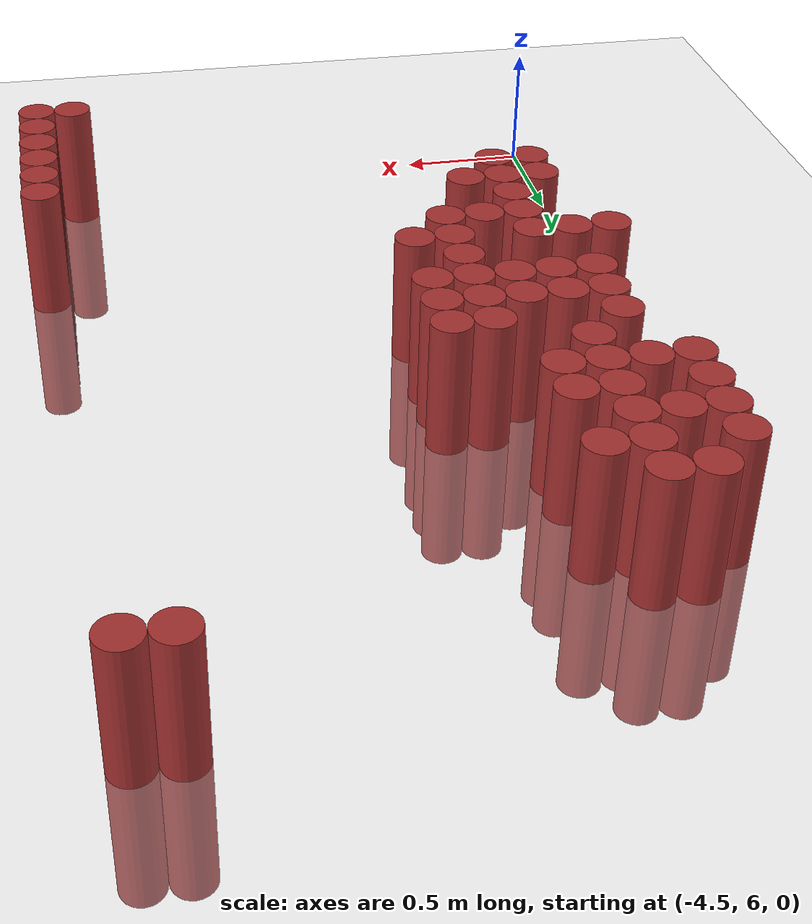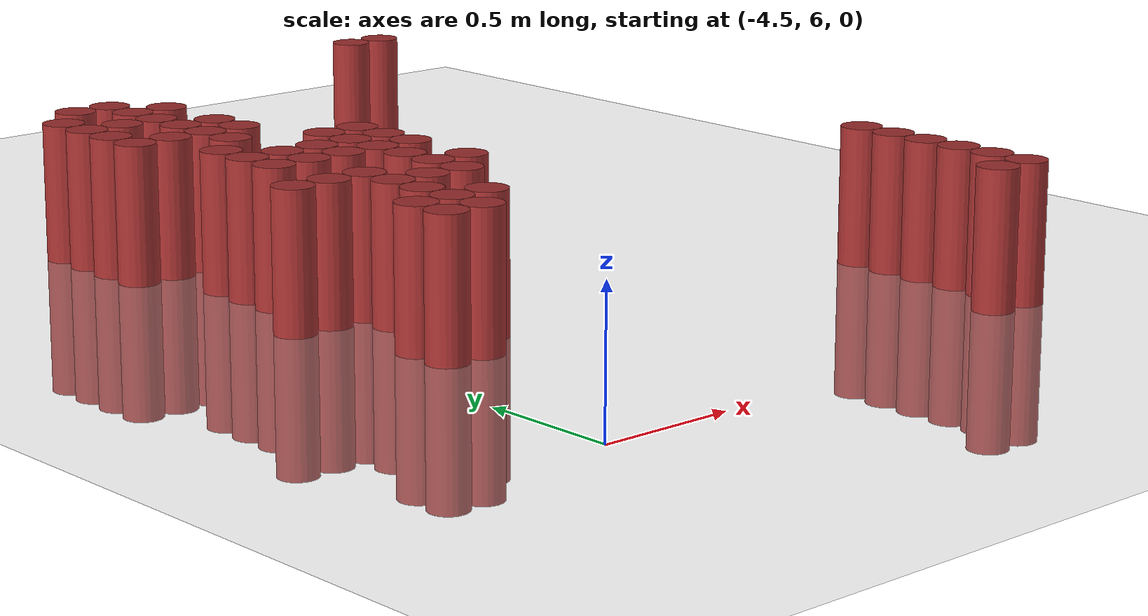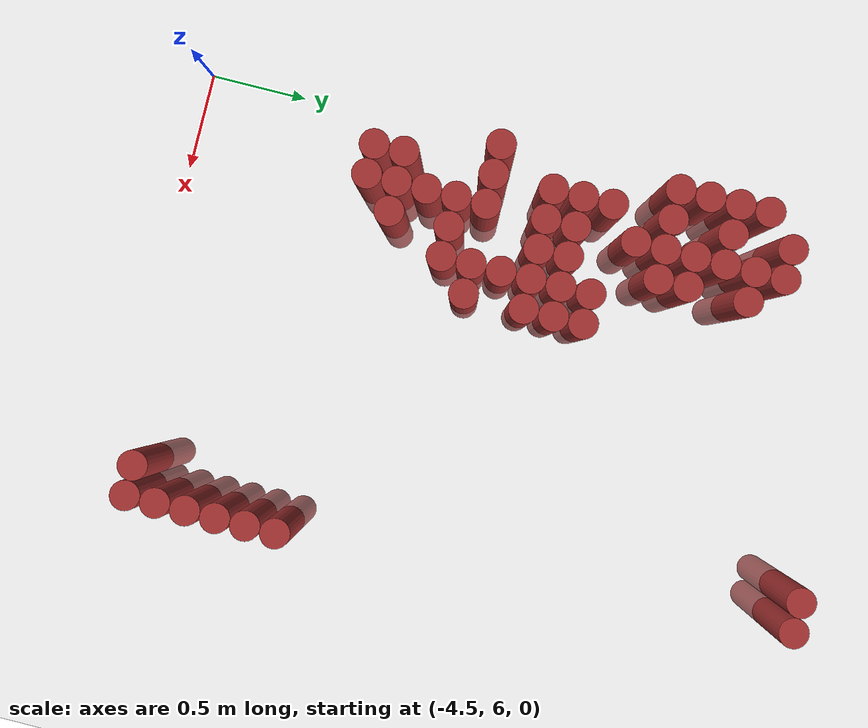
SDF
<sdf version="1.6">
 <world name="default">
  <model name="ground_plane">
   <static>1</static>
   <link name="link">
    <collision name="collision">
     <geometry><plane><normal>0 0 1</normal><size>100 100</size></plane></geometry>
     <surface><friction><ode><mu>100</mu><mu2>50</mu2></ode></friction></surface>
    </collision>
    <visual name="visual">
     <cast_shadows>0</cast_shadows>
     <geometry><plane><normal>0 0 1</normal><size>100 100</size></plane></geometry>
     <material>
      <script><uri>file://media/materials/scripts/gazebo.material</uri><name>Gazebo/Grey</name></script>
     </material>
    </visual>
   </link>
  </model>
  <model name="unit_cylinder_283">
   <static>1</static>
   <pose>-4.425000 7.575000 0.000000 0.000000 0.000000 0.000000</pose>
   <link name="link">
    <inertial>
     <mass>1</mass>
     <inertia><ixx>0.145833</ixx><ixy>0</ixy><ixz>0</ixz><iyy>0.145833</iyy><iyz>0</iyz><izz>0.125</izz></inertia>
    </inertial>
    <collision name="collision">
     <geometry><cylinder><radius>0.075000</radius><length>1</length></cylinder></geometry>
    </collision>
    <visual name="visual">
     <geometry><cylinder><radius>0.075000</radius><length>1</length></cylinder></geometry>
     <material>
      <ambient>0.648000 0.192000 0.192000 1</ambient>
      <diffuse>0.648000 0.192000 0.192000 1</diffuse>
     </material>
     <material>
      <script><name>Gazebo/Grey</name><uri>file://media/materials/scripts/gazebo.material</uri></script>
     </material>
    </visual>
   </link>
  </model>
  <model name="unit_cylinder_284">
   <static>1</static>
   <pose>-4.425000 8.475000 0.000000 0.000000 0.000000 0.000000</pose>
   <link name="link">
    <inertial>
     <mass>1</mass>
     <inertia><ixx>0.145833</ixx><ixy>0</ixy><ixz>0</ixz><iyy>0.145833</iyy><iyz>0</iyz><izz>0.125</izz></inertia>
    </inertial>
    <collision name="collision">
     <geometry><cylinder><radius>0.075000</radius><length>1</length></cylinder></geometry>
    </collision>
    <visual name="visual">
     <geometry><cylinder><radius>0.075000</radius><length>1</length></cylinder></geometry>
     <material>
      <ambient>0.648000 0.192000 0.192000 1</ambient>
      <diffuse>0.648000 0.192000 0.192000 1</diffuse>
     </material>
     <material>
      <script><name>Gazebo/Grey</name><uri>file://media/materials/scripts/gazebo.material</uri></script>
     </material>
    </visual>
   </link>
  </model>
  <model name="unit_cylinder_285">
   <static>1</static>
   <pose>-4.425000 8.625000 0.000000 0.000000 0.000000 0.000000</pose>
   <link name="link">
    <inertial>
     <mass>1</mass>
     <inertia><ixx>0.145833</ixx><ixy>0</ixy><ixz>0</ixz><iyy>0.145833</iyy><iyz>0</iyz><izz>0.125</izz></inertia>
    </inertial>
    <collision name="collision">
     <geometry><cylinder><radius>0.075000</radius><length>1</length></cylinder></geometry>
    </collision>
    <visual name="visual">
     <geometry><cylinder><radius>0.075000</radius><length>1</length></cylinder></geometry>
     <material>
      <ambient>0.648000 0.192000 0.192000 1</ambient>
      <diffuse>0.648000 0.192000 0.192000 1</diffuse>
     </material>
     <material>
      <script><name>Gazebo/Grey</name><uri>file://media/materials/scripts/gazebo.material</uri></script>
     </material>
    </visual>
   </link>
  </model>
  <model name="unit_cylinder_286">
   <static>1</static>
   <pose>-4.425000 8.775000 0.000000 0.000000 0.000000 0.000000</pose>
   <link name="link">
    <inertial>
     <mass>1</mass>
     <inertia><ixx>0.145833</ixx><ixy>0</ixy><ixz>0</ixz><iyy>0.145833</iyy><iyz>0</iyz><izz>0.125</izz></inertia>
    </inertial>
    <collision name="collision">
     <geometry><cylinder><radius>0.075000</radius><length>1</length></cylinder></geometry>
    </collision>
    <visual name="visual">
     <geometry><cylinder><radius>0.075000</radius><length>1</length></cylinder></geometry>
     <material>
      <ambient>0.648000 0.192000 0.192000 1</ambient>
      <diffuse>0.648000 0.192000 0.192000 1</diffuse>
     </material>
     <material>
      <script><name>Gazebo/Grey</name><uri>file://media/materials/scripts/gazebo.material</uri></script>
     </material>
    </visual>
   </link>
  </model>
  <model name="unit_cylinder_287">
   <static>1</static>
   <pose>-4.425000 8.925000 0.000000 0.000000 0.000000 0.000000</pose>
   <link name="link">
    <inertial>
     <mass>1</mass>
     <inertia><ixx>0.145833</ixx><ixy>0</ixy><ixz>0</ixz><iyy>0.145833</iyy><iyz>0</iyz><izz>0.125</izz></inertia>
    </inertial>
    <collision name="collision">
     <geometry><cylinder><radius>0.075000</radius><length>1</length></cylinder></geometry>
    </collision>
    <visual name="visual">
     <geometry><cylinder><radius>0.075000</radius><length>1</length></cylinder></geometry>
     <material>
      <ambient>0.648000 0.192000 0.192000 1</ambient>
      <diffuse>0.648000 0.192000 0.192000 1</diffuse>
     </material>
     <material>
      <script><name>Gazebo/Grey</name><uri>file://media/materials/scripts/gazebo.material</uri></script>
     </material>
    </visual>
   </link>
  </model>
  <model name="unit_cylinder_288">
   <static>1</static>
   <pose>-4.275000 6.975000 0.000000 0.000000 0.000000 0.000000</pose>
   <link name="link">
    <inertial>
     <mass>1</mass>
     <inertia><ixx>0.145833</ixx><ixy>0</ixy><ixz>0</ixz><iyy>0.145833</iyy><iyz>0</iyz><izz>0.125</izz></inertia>
    </inertial>
    <collision name="collision">
     <geometry><cylinder><radius>0.075000</radius><length>1</length></cylinder></geometry>
    </collision>
    <visual name="visual">
     <geometry><cylinder><radius>0.075000</radius><length>1</length></cylinder></geometry>
     <material>
      <ambient>0.648000 0.192000 0.192000 1</ambient>
      <diffuse>0.648000 0.192000 0.192000 1</diffuse>
     </material>
     <material>
      <script><name>Gazebo/Grey</name><uri>file://media/materials/scripts/gazebo.material</uri></script>
     </material>
    </visual>
   </link>
  </model>
  <model name="unit_cylinder_289">
   <static>1</static>
   <pose>-4.275000 7.125000 0.000000 0.000000 0.000000 0.000000</pose>
   <link name="link">
    <inertial>
     <mass>1</mass>
     <inertia><ixx>0.145833</ixx><ixy>0</ixy><ixz>0</ixz><iyy>0.145833</iyy><iyz>0</iyz><izz>0.125</izz></inertia>
    </inertial>
    <collision name="collision">
     <geometry><cylinder><radius>0.075000</radius><length>1</length></cylinder></geometry>
    </collision>
    <visual name="visual">
     <geometry><cylinder><radius>0.075000</radius><length>1</length></cylinder></geometry>
     <material>
      <ambient>0.648000 0.192000 0.192000 1</ambient>
      <diffuse>0.648000 0.192000 0.192000 1</diffuse>
     </material>
     <material>
      <script><name>Gazebo/Grey</name><uri>file://media/materials/scripts/gazebo.material</uri></script>
     </material>
    </visual>
   </link>
  </model>
  <model name="unit_cylinder_290">
   <static>1</static>
   <pose>-4.275000 7.575000 0.000000 0.000000 0.000000 0.000000</pose>
   <link name="link">
    <inertial>
     <mass>1</mass>
     <inertia><ixx>0.145833</ixx><ixy>0</ixy><ixz>0</ixz><iyy>0.145833</iyy><iyz>0</iyz><izz>0.125</izz></inertia>
    </inertial>
    <collision name="collision">
     <geometry><cylinder><radius>0.075000</radius><length>1</length></cylinder></geometry>
    </collision>
    <visual name="visual">
     <geometry><cylinder><radius>0.075000</radius><length>1</length></cylinder></geometry>
     <material>
      <ambient>0.648000 0.192000 0.192000 1</ambient>
      <diffuse>0.648000 0.192000 0.192000 1</diffuse>
     </material>
     <material>
      <script><name>Gazebo/Grey</name><uri>file://media/materials/scripts/gazebo.material</uri></script>
     </material>
    </visual>
   </link>
  </model>
  <model name="unit_cylinder_291">
   <static>1</static>
   <pose>-4.275000 7.875000 0.000000 0.000000 0.000000 0.000000</pose>
   <link name="link">
    <inertial>
     <mass>1</mass>
     <inertia><ixx>0.145833</ixx><ixy>0</ixy><ixz>0</ixz><iyy>0.145833</iyy><iyz>0</iyz><izz>0.125</izz></inertia>
    </inertial>
    <collision name="collision">
     <geometry><cylinder><radius>0.075000</radius><length>1</length></cylinder></geometry>
    </collision>
    <visual name="visual">
     <geometry><cylinder><radius>0.075000</radius><length>1</length></cylinder></geometry>
     <material>
      <ambient>0.648000 0.192000 0.192000 1</ambient>
      <diffuse>0.648000 0.192000 0.192000 1</diffuse>
     </material>
     <material>
      <script><name>Gazebo/Grey</name><uri>file://media/materials/scripts/gazebo.material</uri></script>
     </material>
    </visual>
   </link>
  </model>
  <model name="unit_cylinder_292">
   <static>1</static>
   <pose>-4.275000 8.025000 0.000000 0.000000 0.000000 0.000000</pose>
   <link name="link">
    <inertial>
     <mass>1</mass>
     <inertia><ixx>0.145833</ixx><ixy>0</ixy><ixz>0</ixz><iyy>0.145833</iyy><iyz>0</iyz><izz>0.125</izz></inertia>
    </inertial>
    <collision name="collision">
     <geometry><cylinder><radius>0.075000</radius><length>1</length></cylinder></geometry>
    </collision>
    <visual name="visual">
     <geometry><cylinder><radius>0.075000</radius><length>1</length></cylinder></geometry>
     <material>
      <ambient>0.648000 0.192000 0.192000 1</ambient>
      <diffuse>0.648000 0.192000 0.192000 1</diffuse>
     </material>
     <material>
      <script><name>Gazebo/Grey</name><uri>file://media/materials/scripts/gazebo.material</uri></script>
     </material>
    </visual>
   </link>
  </model>
  <model name="unit_cylinder_293">
   <static>1</static>
   <pose>-4.275000 8.175000 0.000000 0.000000 0.000000 0.000000</pose>
   <link name="link">
    <inertial>
     <mass>1</mass>
     <inertia><ixx>0.145833</ixx><ixy>0</ixy><ixz>0</ixz><iyy>0.145833</iyy><iyz>0</iyz><izz>0.125</izz></inertia>
    </inertial>
    <collision name="collision">
     <geometry><cylinder><radius>0.075000</radius><length>1</length></cylinder></geometry>
    </collision>
    <visual name="visual">
     <geometry><cylinder><radius>0.075000</radius><length>1</length></cylinder></geometry>
     <material>
      <ambient>0.648000 0.192000 0.192000 1</ambient>
      <diffuse>0.648000 0.192000 0.192000 1</diffuse>
     </material>
     <material>
      <script><name>Gazebo/Grey</name><uri>file://media/materials/scripts/gazebo.material</uri></script>
     </material>
    </visual>
   </link>
  </model>
  <model name="unit_cylinder_294">
   <static>1</static>
   <pose>-4.275000 8.475000 0.000000 0.000000 0.000000 0.000000</pose>
   <link name="link">
    <inertial>
     <mass>1</mass>
     <inertia><ixx>0.145833</ixx><ixy>0</ixy><ixz>0</ixz><iyy>0.145833</iyy><iyz>0</iyz><izz>0.125</izz></inertia>
    </inertial>
    <collision name="collision">
     <geometry><cylinder><radius>0.075000</radius><length>1</length></cylinder></geometry>
    </collision>
    <visual name="visual">
     <geometry><cylinder><radius>0.075000</radius><length>1</length></cylinder></geometry>
     <material>
      <ambient>0.648000 0.192000 0.192000 1</ambient>
      <diffuse>0.648000 0.192000 0.192000 1</diffuse>
     </material>
     <material>
      <script><name>Gazebo/Grey</name><uri>file://media/materials/scripts/gazebo.material</uri></script>
     </material>
    </visual>
   </link>
  </model>
  <model name="unit_cylinder_295">
   <static>1</static>
   <pose>-4.275000 8.775000 0.000000 0.000000 0.000000 0.000000</pose>
   <link name="link">
    <inertial>
     <mass>1</mass>
     <inertia><ixx>0.145833</ixx><ixy>0</ixy><ixz>0</ixz><iyy>0.145833</iyy><iyz>0</iyz><izz>0.125</izz></inertia>
    </inertial>
    <collision name="collision">
     <geometry><cylinder><radius>0.075000</radius><length>1</length></cylinder></geometry>
    </collision>
    <visual name="visual">
     <geometry><cylinder><radius>0.075000</radius><length>1</length></cylinder></geometry>
     <material>
      <ambient>0.648000 0.192000 0.192000 1</ambient>
      <diffuse>0.648000 0.192000 0.192000 1</diffuse>
     </material>
     <material>
      <script><name>Gazebo/Grey</name><uri>file://media/materials/scripts/gazebo.material</uri></script>
     </material>
    </visual>
   </link>
  </model>
  <model name="unit_cylinder_296">
   <static>1</static>
   <pose>-4.275000 9.075000 0.000000 0.000000 0.000000 0.000000</pose>
   <link name="link">
    <inertial>
     <mass>1</mass>
     <inertia><ixx>0.145833</ixx><ixy>0</ixy><ixz>0</ixz><iyy>0.145833</iyy><iyz>0</iyz><izz>0.125</izz></inertia>
    </inertial>
    <collision name="collision">
     <geometry><cylinder><radius>0.075000</radius><length>1</length></cylinder></geometry>
    </collision>
    <visual name="visual">
     <geometry><cylinder><radius>0.075000</radius><length>1</length></cylinder></geometry>
     <material>
      <ambient>0.648000 0.192000 0.192000 1</ambient>
      <diffuse>0.648000 0.192000 0.192000 1</diffuse>
     </material>
     <material>
      <script><name>Gazebo/Grey</name><uri>file://media/materials/scripts/gazebo.material</uri></script>
     </material>
    </visual>
   </link>
  </model>
  <model name="unit_cylinder_297">
   <static>1</static>
   <pose>-4.125000 6.975000 0.000000 0.000000 0.000000 0.000000</pose>
   <link name="link">
    <inertial>
     <mass>1</mass>
     <inertia><ixx>0.145833</ixx><ixy>0</ixy><ixz>0</ixz><iyy>0.145833</iyy><iyz>0</iyz><izz>0.125</izz></inertia>
    </inertial>
    <collision name="collision">
     <geometry><cylinder><radius>0.075000</radius><length>1</length></cylinder></geometry>
    </collision>
    <visual name="visual">
     <geometry><cylinder><radius>0.075000</radius><length>1</length></cylinder></geometry>
     <material>
      <ambient>0.648000 0.192000 0.192000 1</ambient>
      <diffuse>0.648000 0.192000 0.192000 1</diffuse>
     </material>
     <material>
      <script><name>Gazebo/Grey</name><uri>file://media/materials/scripts/gazebo.material</uri></script>
     </material>
    </visual>
   </link>
  </model>
  <model name="unit_cylinder_298">
   <static>1</static>
   <pose>-4.125000 7.125000 0.000000 0.000000 0.000000 0.000000</pose>
   <link name="link">
    <inertial>
     <mass>1</mass>
     <inertia><ixx>0.145833</ixx><ixy>0</ixy><ixz>0</ixz><iyy>0.145833</iyy><iyz>0</iyz><izz>0.125</izz></inertia>
    </inertial>
    <collision name="collision">
     <geometry><cylinder><radius>0.075000</radius><length>1</length></cylinder></geometry>
    </collision>
    <visual name="visual">
     <geometry><cylinder><radius>0.075000</radius><length>1</length></cylinder></geometry>
     <material>
      <ambient>0.648000 0.192000 0.192000 1</ambient>
      <diffuse>0.648000 0.192000 0.192000 1</diffuse>
     </material>
     <material>
      <script><name>Gazebo/Grey</name><uri>file://media/materials/scripts/gazebo.material</uri></script>
     </material>
    </visual>
   </link>
  </model>
  <model name="unit_cylinder_299">
   <static>1</static>
   <pose>-4.125000 7.275000 0.000000 0.000000 0.000000 0.000000</pose>
   <link name="link">
    <inertial>
     <mass>1</mass>
     <inertia><ixx>0.145833</ixx><ixy>0</ixy><ixz>0</ixz><iyy>0.145833</iyy><iyz>0</iyz><izz>0.125</izz></inertia>
    </inertial>
    <collision name="collision">
     <geometry><cylinder><radius>0.075000</radius><length>1</length></cylinder></geometry>
    </collision>
    <visual name="visual">
     <geometry><cylinder><radius>0.075000</radius><length>1</length></cylinder></geometry>
     <material>
      <ambient>0.648000 0.192000 0.192000 1</ambient>
      <diffuse>0.648000 0.192000 0.192000 1</diffuse>
     </material>
     <material>
      <script><name>Gazebo/Grey</name><uri>file://media/materials/scripts/gazebo.material</uri></script>
     </material>
    </visual>
   </link>
  </model>
  <model name="unit_cylinder_300">
   <static>1</static>
   <pose>-4.125000 7.425000 0.000000 0.000000 0.000000 0.000000</pose>
   <link name="link">
    <inertial>
     <mass>1</mass>
     <inertia><ixx>0.145833</ixx><ixy>0</ixy><ixz>0</ixz><iyy>0.145833</iyy><iyz>0</iyz><izz>0.125</izz></inertia>
    </inertial>
    <collision name="collision">
     <geometry><cylinder><radius>0.075000</radius><length>1</length></cylinder></geometry>
    </collision>
    <visual name="visual">
     <geometry><cylinder><radius>0.075000</radius><length>1</length></cylinder></geometry>
     <material>
      <ambient>0.648000 0.192000 0.192000 1</ambient>
      <diffuse>0.648000 0.192000 0.192000 1</diffuse>
     </material>
     <material>
      <script><name>Gazebo/Grey</name><uri>file://media/materials/scripts/gazebo.material</uri></script>
     </material>
    </visual>
   </link>
  </model>
  <model name="unit_cylinder_301">
   <static>1</static>
   <pose>-4.125000 7.575000 0.000000 0.000000 0.000000 0.000000</pose>
   <link name="link">
    <inertial>
     <mass>1</mass>
     <inertia><ixx>0.145833</ixx><ixy>0</ixy><ixz>0</ixz><iyy>0.145833</iyy><iyz>0</iyz><izz>0.125</izz></inertia>
    </inertial>
    <collision name="collision">
     <geometry><cylinder><radius>0.075000</radius><length>1</length></cylinder></geometry>
    </collision>
    <visual name="visual">
     <geometry><cylinder><radius>0.075000</radius><length>1</length></cylinder></geometry>
     <material>
      <ambient>0.648000 0.192000 0.192000 1</ambient>
      <diffuse>0.648000 0.192000 0.192000 1</diffuse>
     </material>
     <material>
      <script><name>Gazebo/Grey</name><uri>file://media/materials/scripts/gazebo.material</uri></script>
     </material>
    </visual>
   </link>
  </model>
  <model name="unit_cylinder_302">
   <static>1</static>
   <pose>-4.125000 7.875000 0.000000 0.000000 0.000000 0.000000</pose>
   <link name="link">
    <inertial>
     <mass>1</mass>
     <inertia><ixx>0.145833</ixx><ixy>0</ixy><ixz>0</ixz><iyy>0.145833</iyy><iyz>0</iyz><izz>0.125</izz></inertia>
    </inertial>
    <collision name="collision">
     <geometry><cylinder><radius>0.075000</radius><length>1</length></cylinder></geometry>
    </collision>
    <visual name="visual">
     <geometry><cylinder><radius>0.075000</radius><length>1</length></cylinder></geometry>
     <material>
      <ambient>0.648000 0.192000 0.192000 1</ambient>
      <diffuse>0.648000 0.192000 0.192000 1</diffuse>
     </material>
     <material>
      <script><name>Gazebo/Grey</name><uri>file://media/materials/scripts/gazebo.material</uri></script>
     </material>
    </visual>
   </link>
  </model>
  <model name="unit_cylinder_303">
   <static>1</static>
   <pose>-4.125000 8.025000 0.000000 0.000000 0.000000 0.000000</pose>
   <link name="link">
    <inertial>
     <mass>1</mass>
     <inertia><ixx>0.145833</ixx><ixy>0</ixy><ixz>0</ixz><iyy>0.145833</iyy><iyz>0</iyz><izz>0.125</izz></inertia>
    </inertial>
    <collision name="collision">
     <geometry><cylinder><radius>0.075000</radius><length>1</length></cylinder></geometry>
    </collision>
    <visual name="visual">
     <geometry><cylinder><radius>0.075000</radius><length>1</length></cylinder></geometry>
     <material>
      <ambient>0.648000 0.192000 0.192000 1</ambient>
      <diffuse>0.648000 0.192000 0.192000 1</diffuse>
     </material>
     <material>
      <script><name>Gazebo/Grey</name><uri>file://media/materials/scripts/gazebo.material</uri></script>
     </material>
    </visual>
   </link>
  </model>
  <model name="unit_cylinder_304">
   <static>1</static>
   <pose>-4.125000 8.325000 0.000000 0.000000 0.000000 0.000000</pose>
   <link name="link">
    <inertial>
     <mass>1</mass>
     <inertia><ixx>0.145833</ixx><ixy>0</ixy><ixz>0</ixz><iyy>0.145833</iyy><iyz>0</iyz><izz>0.125</izz></inertia>
    </inertial>
    <collision name="collision">
     <geometry><cylinder><radius>0.075000</radius><length>1</length></cylinder></geometry>
    </collision>
    <visual name="visual">
     <geometry><cylinder><radius>0.075000</radius><length>1</length></cylinder></geometry>
     <material>
      <ambient>0.648000 0.192000 0.192000 1</ambient>
      <diffuse>0.648000 0.192000 0.192000 1</diffuse>
     </material>
     <material>
      <script><name>Gazebo/Grey</name><uri>file://media/materials/scripts/gazebo.material</uri></script>
     </material>
    </visual>
   </link>
  </model>
  <model name="unit_cylinder_305">
   <static>1</static>
   <pose>-4.125000 8.475000 0.000000 0.000000 0.000000 0.000000</pose>
   <link name="link">
    <inertial>
     <mass>1</mass>
     <inertia><ixx>0.145833</ixx><ixy>0</ixy><ixz>0</ixz><iyy>0.145833</iyy><iyz>0</iyz><izz>0.125</izz></inertia>
    </inertial>
    <collision name="collision">
     <geometry><cylinder><radius>0.075000</radius><length>1</length></cylinder></geometry>
    </collision>
    <visual name="visual">
     <geometry><cylinder><radius>0.075000</radius><length>1</length></cylinder></geometry>
     <material>
      <ambient>0.648000 0.192000 0.192000 1</ambient>
      <diffuse>0.648000 0.192000 0.192000 1</diffuse>
     </material>
     <material>
      <script><name>Gazebo/Grey</name><uri>file://media/materials/scripts/gazebo.material</uri></script>
     </material>
    </visual>
   </link>
  </model>
  <model name="unit_cylinder_306">
   <static>1</static>
   <pose>-4.125000 8.625000 0.000000 0.000000 0.000000 0.000000</pose>
   <link name="link">
    <inertial>
     <mass>1</mass>
     <inertia><ixx>0.145833</ixx><ixy>0</ixy><ixz>0</ixz><iyy>0.145833</iyy><iyz>0</iyz><izz>0.125</izz></inertia>
    </inertial>
    <collision name="collision">
     <geometry><cylinder><radius>0.075000</radius><length>1</length></cylinder></geometry>
    </collision>
    <visual name="visual">
     <geometry><cylinder><radius>0.075000</radius><length>1</length></cylinder></geometry>
     <material>
      <ambient>0.648000 0.192000 0.192000 1</ambient>
      <diffuse>0.648000 0.192000 0.192000 1</diffuse>
     </material>
     <material>
      <script><name>Gazebo/Grey</name><uri>file://media/materials/scripts/gazebo.material</uri></script>
     </material>
    </visual>
   </link>
  </model>
  <model name="unit_cylinder_307">
   <static>1</static>
   <pose>-4.125000 8.775000 0.000000 0.000000 0.000000 0.000000</pose>
   <link name="link">
    <inertial>
     <mass>1</mass>
     <inertia><ixx>0.145833</ixx><ixy>0</ixy><ixz>0</ixz><iyy>0.145833</iyy><iyz>0</iyz><izz>0.125</izz></inertia>
    </inertial>
    <collision name="collision">
     <geometry><cylinder><radius>0.075000</radius><length>1</length></cylinder></geometry>
    </collision>
    <visual name="visual">
     <geometry><cylinder><radius>0.075000</radius><length>1</length></cylinder></geometry>
     <material>
      <ambient>0.648000 0.192000 0.192000 1</ambient>
      <diffuse>0.648000 0.192000 0.192000 1</diffuse>
     </material>
     <material>
      <script><name>Gazebo/Grey</name><uri>file://media/materials/scripts/gazebo.material</uri></script>
     </material>
    </visual>
   </link>
  </model>
  <model name="unit_cylinder_308">
   <static>1</static>
   <pose>-4.125000 8.925000 0.000000 0.000000 0.000000 0.000000</pose>
   <link name="link">
    <inertial>
     <mass>1</mass>
     <inertia><ixx>0.145833</ixx><ixy>0</ixy><ixz>0</ixz><iyy>0.145833</iyy><iyz>0</iyz><izz>0.125</izz></inertia>
    </inertial>
    <collision name="collision">
     <geometry><cylinder><radius>0.075000</radius><length>1</length></cylinder></geometry>
    </collision>
    <visual name="visual">
     <geometry><cylinder><radius>0.075000</radius><length>1</length></cylinder></geometry>
     <material>
      <ambient>0.648000 0.192000 0.192000 1</ambient>
      <diffuse>0.648000 0.192000 0.192000 1</diffuse>
     </material>
     <material>
      <script><name>Gazebo/Grey</name><uri>file://media/materials/scripts/gazebo.material</uri></script>
     </material>
    </visual>
   </link>
  </model>
  <model name="unit_cylinder_309">
   <static>1</static>
   <pose>-4.125000 9.075000 0.000000 0.000000 0.000000 0.000000</pose>
   <link name="link">
    <inertial>
     <mass>1</mass>
     <inertia><ixx>0.145833</ixx><ixy>0</ixy><ixz>0</ixz><iyy>0.145833</iyy><iyz>0</iyz><izz>0.125</izz></inertia>
    </inertial>
    <collision name="collision">
     <geometry><cylinder><radius>0.075000</radius><length>1</length></cylinder></geometry>
    </collision>
    <visual name="visual">
     <geometry><cylinder><radius>0.075000</radius><length>1</length></cylinder></geometry>
     <material>
      <ambient>0.648000 0.192000 0.192000 1</ambient>
      <diffuse>0.648000 0.192000 0.192000 1</diffuse>
     </material>
     <material>
      <script><name>Gazebo/Grey</name><uri>file://media/materials/scripts/gazebo.material</uri></script>
     </material>
    </visual>
   </link>
  </model>
  <model name="unit_cylinder_310">
   <static>1</static>
   <pose>-3.975000 7.125000 0.000000 0.000000 0.000000 0.000000</pose>
   <link name="link">
    <inertial>
     <mass>1</mass>
     <inertia><ixx>0.145833</ixx><ixy>0</ixy><ixz>0</ixz><iyy>0.145833</iyy><iyz>0</iyz><izz>0.125</izz></inertia>
    </inertial>
    <collision name="collision">
     <geometry><cylinder><radius>0.075000</radius><length>1</length></cylinder></geometry>
    </collision>
    <visual name="visual">
     <geometry><cylinder><radius>0.075000</radius><length>1</length></cylinder></geometry>
     <material>
      <ambient>0.648000 0.192000 0.192000 1</ambient>
      <diffuse>0.648000 0.192000 0.192000 1</diffuse>
     </material>
     <material>
      <script><name>Gazebo/Grey</name><uri>file://media/materials/scripts/gazebo.material</uri></script>
     </material>
    </visual>
   </link>
  </model>
  <model name="unit_cylinder_311">
   <static>1</static>
   <pose>-3.975000 7.425000 0.000000 0.000000 0.000000 0.000000</pose>
   <link name="link">
    <inertial>
     <mass>1</mass>
     <inertia><ixx>0.145833</ixx><ixy>0</ixy><ixz>0</ixz><iyy>0.145833</iyy><iyz>0</iyz><izz>0.125</izz></inertia>
    </inertial>
    <collision name="collision">
     <geometry><cylinder><radius>0.075000</radius><length>1</length></cylinder></geometry>
    </collision>
    <visual name="visual">
     <geometry><cylinder><radius>0.075000</radius><length>1</length></cylinder></geometry>
     <material>
      <ambient>0.648000 0.192000 0.192000 1</ambient>
      <diffuse>0.648000 0.192000 0.192000 1</diffuse>
     </material>
     <material>
      <script><name>Gazebo/Grey</name><uri>file://media/materials/scripts/gazebo.material</uri></script>
     </material>
    </visual>
   </link>
  </model>
  <model name="unit_cylinder_312">
   <static>1</static>
   <pose>-3.975000 7.875000 0.000000 0.000000 0.000000 0.000000</pose>
   <link name="link">
    <inertial>
     <mass>1</mass>
     <inertia><ixx>0.145833</ixx><ixy>0</ixy><ixz>0</ixz><iyy>0.145833</iyy><iyz>0</iyz><izz>0.125</izz></inertia>
    </inertial>
    <collision name="collision">
     <geometry><cylinder><radius>0.075000</radius><length>1</length></cylinder></geometry>
    </collision>
    <visual name="visual">
     <geometry><cylinder><radius>0.075000</radius><length>1</length></cylinder></geometry>
     <material>
      <ambient>0.648000 0.192000 0.192000 1</ambient>
      <diffuse>0.648000 0.192000 0.192000 1</diffuse>
     </material>
     <material>
      <script><name>Gazebo/Grey</name><uri>file://media/materials/scripts/gazebo.material</uri></script>
     </material>
    </visual>
   </link>
  </model>
  <model name="unit_cylinder_313">
   <static>1</static>
   <pose>-3.975000 8.025000 0.000000 0.000000 0.000000 0.000000</pose>
   <link name="link">
    <inertial>
     <mass>1</mass>
     <inertia><ixx>0.145833</ixx><ixy>0</ixy><ixz>0</ixz><iyy>0.145833</iyy><iyz>0</iyz><izz>0.125</izz></inertia>
    </inertial>
    <collision name="collision">
     <geometry><cylinder><radius>0.075000</radius><length>1</length></cylinder></geometry>
    </collision>
    <visual name="visual">
     <geometry><cylinder><radius>0.075000</radius><length>1</length></cylinder></geometry>
     <material>
      <ambient>0.648000 0.192000 0.192000 1</ambient>
      <diffuse>0.648000 0.192000 0.192000 1</diffuse>
     </material>
     <material>
      <script><name>Gazebo/Grey</name><uri>file://media/materials/scripts/gazebo.material</uri></script>
     </material>
    </visual>
   </link>
  </model>
  <model name="unit_cylinder_314">
   <static>1</static>
   <pose>-3.975000 8.475000 0.000000 0.000000 0.000000 0.000000</pose>
   <link name="link">
    <inertial>
     <mass>1</mass>
     <inertia><ixx>0.145833</ixx><ixy>0</ixy><ixz>0</ixz><iyy>0.145833</iyy><iyz>0</iyz><izz>0.125</izz></inertia>
    </inertial>
    <collision name="collision">
     <geometry><cylinder><radius>0.075000</radius><length>1</length></cylinder></geometry>
    </collision>
    <visual name="visual">
     <geometry><cylinder><radius>0.075000</radius><length>1</length></cylinder></geometry>
     <material>
      <ambient>0.648000 0.192000 0.192000 1</ambient>
      <diffuse>0.648000 0.192000 0.192000 1</diffuse>
     </material>
     <material>
      <script><name>Gazebo/Grey</name><uri>file://media/materials/scripts/gazebo.material</uri></script>
     </material>
    </visual>
   </link>
  </model>
  <model name="unit_cylinder_315">
   <static>1</static>
   <pose>-3.975000 8.625000 0.000000 0.000000 0.000000 0.000000</pose>
   <link name="link">
    <inertial>
     <mass>1</mass>
     <inertia><ixx>0.145833</ixx><ixy>0</ixy><ixz>0</ixz><iyy>0.145833</iyy><iyz>0</iyz><izz>0.125</izz></inertia>
    </inertial>
    <collision name="collision">
     <geometry><cylinder><radius>0.075000</radius><length>1</length></cylinder></geometry>
    </collision>
    <visual name="visual">
     <geometry><cylinder><radius>0.075000</radius><length>1</length></cylinder></geometry>
     <material>
      <ambient>0.648000 0.192000 0.192000 1</ambient>
      <diffuse>0.648000 0.192000 0.192000 1</diffuse>
     </material>
     <material>
      <script><name>Gazebo/Grey</name><uri>file://media/materials/scripts/gazebo.material</uri></script>
     </material>
    </visual>
   </link>
  </model>
  <model name="unit_cylinder_316">
   <static>1</static>
   <pose>-3.975000 8.925000 0.000000 0.000000 0.000000 0.000000</pose>
   <link name="link">
    <inertial>
     <mass>1</mass>
     <inertia><ixx>0.145833</ixx><ixy>0</ixy><ixz>0</ixz><iyy>0.145833</iyy><iyz>0</iyz><izz>0.125</izz></inertia>
    </inertial>
    <collision name="collision">
     <geometry><cylinder><radius>0.075000</radius><length>1</length></cylinder></geometry>
    </collision>
    <visual name="visual">
     <geometry><cylinder><radius>0.075000</radius><length>1</length></cylinder></geometry>
     <material>
      <ambient>0.648000 0.192000 0.192000 1</ambient>
      <diffuse>0.648000 0.192000 0.192000 1</diffuse>
     </material>
     <material>
      <script><name>Gazebo/Grey</name><uri>file://media/materials/scripts/gazebo.material</uri></script>
     </material>
    </visual>
   </link>
  </model>
  <model name="unit_cylinder_317">
   <static>1</static>
   <pose>-3.825000 7.425000 0.000000 0.000000 0.000000 0.000000</pose>
   <link name="link">
    <inertial>
     <mass>1</mass>
     <inertia><ixx>0.145833</ixx><ixy>0</ixy><ixz>0</ixz><iyy>0.145833</iyy><iyz>0</iyz><izz>0.125</izz></inertia>
    </inertial>
    <collision name="collision">
     <geometry><cylinder><radius>0.075000</radius><length>1</length></cylinder></geometry>
    </collision>
    <visual name="visual">
     <geometry><cylinder><radius>0.075000</radius><length>1</length></cylinder></geometry>
     <material>
      <ambient>0.648000 0.192000 0.192000 1</ambient>
      <diffuse>0.648000 0.192000 0.192000 1</diffuse>
     </material>
     <material>
      <script><name>Gazebo/Grey</name><uri>file://media/materials/scripts/gazebo.material</uri></script>
     </material>
    </visual>
   </link>
  </model>
  <model name="unit_cylinder_318">
   <static>1</static>
   <pose>-3.825000 7.575000 0.000000 0.000000 0.000000 0.000000</pose>
   <link name="link">
    <inertial>
     <mass>1</mass>
     <inertia><ixx>0.145833</ixx><ixy>0</ixy><ixz>0</ixz><iyy>0.145833</iyy><iyz>0</iyz><izz>0.125</izz></inertia>
    </inertial>
    <collision name="collision">
     <geometry><cylinder><radius>0.075000</radius><length>1</length></cylinder></geometry>
    </collision>
    <visual name="visual">
     <geometry><cylinder><radius>0.075000</radius><length>1</length></cylinder></geometry>
     <material>
      <ambient>0.648000 0.192000 0.192000 1</ambient>
      <diffuse>0.648000 0.192000 0.192000 1</diffuse>
     </material>
     <material>
      <script><name>Gazebo/Grey</name><uri>file://media/materials/scripts/gazebo.material</uri></script>
     </material>
    </visual>
   </link>
  </model>
  <model name="unit_cylinder_319">
   <static>1</static>
   <pose>-3.825000 7.725000 0.000000 0.000000 0.000000 0.000000</pose>
   <link name="link">
    <inertial>
     <mass>1</mass>
     <inertia><ixx>0.145833</ixx><ixy>0</ixy><ixz>0</ixz><iyy>0.145833</iyy><iyz>0</iyz><izz>0.125</izz></inertia>
    </inertial>
    <collision name="collision">
     <geometry><cylinder><radius>0.075000</radius><length>1</length></cylinder></geometry>
    </collision>
    <visual name="visual">
     <geometry><cylinder><radius>0.075000</radius><length>1</length></cylinder></geometry>
     <material>
      <ambient>0.648000 0.192000 0.192000 1</ambient>
      <diffuse>0.648000 0.192000 0.192000 1</diffuse>
     </material>
     <material>
      <script><name>Gazebo/Grey</name><uri>file://media/materials/scripts/gazebo.material</uri></script>
     </material>
    </visual>
   </link>
  </model>
  <model name="unit_cylinder_320">
   <static>1</static>
   <pose>-3.825000 7.875000 0.000000 0.000000 0.000000 0.000000</pose>
   <link name="link">
    <inertial>
     <mass>1</mass>
     <inertia><ixx>0.145833</ixx><ixy>0</ixy><ixz>0</ixz><iyy>0.145833</iyy><iyz>0</iyz><izz>0.125</izz></inertia>
    </inertial>
    <collision name="collision">
     <geometry><cylinder><radius>0.075000</radius><length>1</length></cylinder></geometry>
    </collision>
    <visual name="visual">
     <geometry><cylinder><radius>0.075000</radius><length>1</length></cylinder></geometry>
     <material>
      <ambient>0.648000 0.192000 0.192000 1</ambient>
      <diffuse>0.648000 0.192000 0.192000 1</diffuse>
     </material>
     <material>
      <script><name>Gazebo/Grey</name><uri>file://media/materials/scripts/gazebo.material</uri></script>
     </material>
    </visual>
   </link>
  </model>
  <model name="unit_cylinder_321">
   <static>1</static>
   <pose>-3.825000 8.025000 0.000000 0.000000 0.000000 0.000000</pose>
   <link name="link">
    <inertial>
     <mass>1</mass>
     <inertia><ixx>0.145833</ixx><ixy>0</ixy><ixz>0</ixz><iyy>0.145833</iyy><iyz>0</iyz><izz>0.125</izz></inertia>
    </inertial>
    <collision name="collision">
     <geometry><cylinder><radius>0.075000</radius><length>1</length></cylinder></geometry>
    </collision>
    <visual name="visual">
     <geometry><cylinder><radius>0.075000</radius><length>1</length></cylinder></geometry>
     <material>
      <ambient>0.648000 0.192000 0.192000 1</ambient>
      <diffuse>0.648000 0.192000 0.192000 1</diffuse>
     </material>
     <material>
      <script><name>Gazebo/Grey</name><uri>file://media/materials/scripts/gazebo.material</uri></script>
     </material>
    </visual>
   </link>
  </model>
  <model name="unit_cylinder_322">
   <static>1</static>
   <pose>-3.825000 8.175000 0.000000 0.000000 0.000000 0.000000</pose>
   <link name="link">
    <inertial>
     <mass>1</mass>
     <inertia><ixx>0.145833</ixx><ixy>0</ixy><ixz>0</ixz><iyy>0.145833</iyy><iyz>0</iyz><izz>0.125</izz></inertia>
    </inertial>
    <collision name="collision">
     <geometry><cylinder><radius>0.075000</radius><length>1</length></cylinder></geometry>
    </collision>
    <visual name="visual">
     <geometry><cylinder><radius>0.075000</radius><length>1</length></cylinder></geometry>
     <material>
      <ambient>0.648000 0.192000 0.192000 1</ambient>
      <diffuse>0.648000 0.192000 0.192000 1</diffuse>
     </material>
     <material>
      <script><name>Gazebo/Grey</name><uri>file://media/materials/scripts/gazebo.material</uri></script>
     </material>
    </visual>
   </link>
  </model>
  <model name="unit_cylinder_323">
   <static>1</static>
   <pose>-3.675000 7.575000 0.000000 0.000000 0.000000 0.000000</pose>
   <link name="link">
    <inertial>
     <mass>1</mass>
     <inertia><ixx>0.145833</ixx><ixy>0</ixy><ixz>0</ixz><iyy>0.145833</iyy><iyz>0</iyz><izz>0.125</izz></inertia>
    </inertial>
    <collision name="collision">
     <geometry><cylinder><radius>0.075000</radius><length>1</length></cylinder></geometry>
    </collision>
    <visual name="visual">
     <geometry><cylinder><radius>0.075000</radius><length>1</length></cylinder></geometry>
     <material>
      <ambient>0.648000 0.192000 0.192000 1</ambient>
      <diffuse>0.648000 0.192000 0.192000 1</diffuse>
     </material>
     <material>
      <script><name>Gazebo/Grey</name><uri>file://media/materials/scripts/gazebo.material</uri></script>
     </material>
    </visual>
   </link>
  </model>
  <model name="unit_cylinder_324">
   <static>1</static>
   <pose>-3.675000 7.875000 0.000000 0.000000 0.000000 0.000000</pose>
   <link name="link">
    <inertial>
     <mass>1</mass>
     <inertia><ixx>0.145833</ixx><ixy>0</ixy><ixz>0</ixz><iyy>0.145833</iyy><iyz>0</iyz><izz>0.125</izz></inertia>
    </inertial>
    <collision name="collision">
     <geometry><cylinder><radius>0.075000</radius><length>1</length></cylinder></geometry>
    </collision>
    <visual name="visual">
     <geometry><cylinder><radius>0.075000</radius><length>1</length></cylinder></geometry>
     <material>
      <ambient>0.648000 0.192000 0.192000 1</ambient>
      <diffuse>0.648000 0.192000 0.192000 1</diffuse>
     </material>
     <material>
      <script><name>Gazebo/Grey</name><uri>file://media/materials/scripts/gazebo.material</uri></script>
     </material>
    </visual>
   </link>
  </model>
  <model name="unit_cylinder_325">
   <static>1</static>
   <pose>-3.675000 8.025000 0.000000 0.000000 0.000000 0.000000</pose>
   <link name="link">
    <inertial>
     <mass>1</mass>
     <inertia><ixx>0.145833</ixx><ixy>0</ixy><ixz>0</ixz><iyy>0.145833</iyy><iyz>0</iyz><izz>0.125</izz></inertia>
    </inertial>
    <collision name="collision">
     <geometry><cylinder><radius>0.075000</radius><length>1</length></cylinder></geometry>
    </collision>
    <visual name="visual">
     <geometry><cylinder><radius>0.075000</radius><length>1</length></cylinder></geometry>
     <material>
      <ambient>0.648000 0.192000 0.192000 1</ambient>
      <diffuse>0.648000 0.192000 0.192000 1</diffuse>
     </material>
     <material>
      <script><name>Gazebo/Grey</name><uri>file://media/materials/scripts/gazebo.material</uri></script>
     </material>
    </visual>
   </link>
  </model>
  <model name="unit_cylinder_326">
   <static>1</static>
   <pose>-3.675000 8.175000 0.000000 0.000000 0.000000 0.000000</pose>
   <link name="link">
    <inertial>
     <mass>1</mass>
     <inertia><ixx>0.145833</ixx><ixy>0</ixy><ixz>0</ixz><iyy>0.145833</iyy><iyz>0</iyz><izz>0.125</izz></inertia>
    </inertial>
    <collision name="collision">
     <geometry><cylinder><radius>0.075000</radius><length>1</length></cylinder></geometry>
    </collision>
    <visual name="visual">
     <geometry><cylinder><radius>0.075000</radius><length>1</length></cylinder></geometry>
     <material>
      <ambient>0.648000 0.192000 0.192000 1</ambient>
      <diffuse>0.648000 0.192000 0.192000 1</diffuse>
     </material>
     <material>
      <script><name>Gazebo/Grey</name><uri>file://media/materials/scripts/gazebo.material</uri></script>
     </material>
    </visual>
   </link>
  </model>
  <model name="unit_cylinder_342">
   <static>1</static>
   <pose>-2.625000 9.525000 0.000000 0.000000 0.000000 0.000000</pose>
   <link name="link">
    <inertial>
     <mass>1</mass>
     <inertia><ixx>0.145833</ixx><ixy>0</ixy><ixz>0</ixz><iyy>0.145833</iyy><iyz>0</iyz><izz>0.125</izz></inertia>
    </inertial>
    <collision name="collision">
     <geometry><cylinder><radius>0.075000</radius><length>1</length></cylinder></geometry>
    </collision>
    <visual name="visual">
     <geometry><cylinder><radius>0.075000</radius><length>1</length></cylinder></geometry>
     <material>
      <ambient>0.648000 0.192000 0.192000 1</ambient>
      <diffuse>0.648000 0.192000 0.192000 1</diffuse>
     </material>
     <material>
      <script><name>Gazebo/Grey</name><uri>file://media/materials/scripts/gazebo.material</uri></script>
     </material>
    </visual>
   </link>
  </model>
  <model name="unit_cylinder_345">
   <static>1</static>
   <pose>-2.475000 6.225000 0.000000 0.000000 0.000000 0.000000</pose>
   <link name="link">
    <inertial>
     <mass>1</mass>
     <inertia><ixx>0.145833</ixx><ixy>0</ixy><ixz>0</ixz><iyy>0.145833</iyy><iyz>0</iyz><izz>0.125</izz></inertia>
    </inertial>
    <collision name="collision">
     <geometry><cylinder><radius>0.075000</radius><length>1</length></cylinder></geometry>
    </collision>
    <visual name="visual">
     <geometry><cylinder><radius>0.075000</radius><length>1</length></cylinder></geometry>
     <material>
      <ambient>0.648000 0.192000 0.192000 1</ambient>
      <diffuse>0.648000 0.192000 0.192000 1</diffuse>
     </material>
     <material>
      <script><name>Gazebo/Grey</name><uri>file://media/materials/scripts/gazebo.material</uri></script>
     </material>
    </visual>
   </link>
  </model>
  <model name="unit_cylinder_346">
   <static>1</static>
   <pose>-2.475000 9.525000 0.000000 0.000000 0.000000 0.000000</pose>
   <link name="link">
    <inertial>
     <mass>1</mass>
     <inertia><ixx>0.145833</ixx><ixy>0</ixy><ixz>0</ixz><iyy>0.145833</iyy><iyz>0</iyz><izz>0.125</izz></inertia>
    </inertial>
    <collision name="collision">
     <geometry><cylinder><radius>0.075000</radius><length>1</length></cylinder></geometry>
    </collision>
    <visual name="visual">
     <geometry><cylinder><radius>0.075000</radius><length>1</length></cylinder></geometry>
     <material>
      <ambient>0.648000 0.192000 0.192000 1</ambient>
      <diffuse>0.648000 0.192000 0.192000 1</diffuse>
     </material>
     <material>
      <script><name>Gazebo/Grey</name><uri>file://media/materials/scripts/gazebo.material</uri></script>
     </material>
    </visual>
   </link>
  </model>
  <model name="unit_cylinder_348">
   <static>1</static>
   <pose>-2.325000 6.225000 0.000000 0.000000 0.000000 0.000000</pose>
   <link name="link">
    <inertial>
     <mass>1</mass>
     <inertia><ixx>0.145833</ixx><ixy>0</ixy><ixz>0</ixz><iyy>0.145833</iyy><iyz>0</iyz><izz>0.125</izz></inertia>
    </inertial>
    <collision name="collision">
     <geometry><cylinder><radius>0.075000</radius><length>1</length></cylinder></geometry>
    </collision>
    <visual name="visual">
     <geometry><cylinder><radius>0.075000</radius><length>1</length></cylinder></geometry>
     <material>
      <ambient>0.648000 0.192000 0.192000 1</ambient>
      <diffuse>0.648000 0.192000 0.192000 1</diffuse>
     </material>
     <material>
      <script><name>Gazebo/Grey</name><uri>file://media/materials/scripts/gazebo.material</uri></script>
     </material>
    </visual>
   </link>
  </model>
  <model name="unit_cylinder_349">
   <static>1</static>
   <pose>-2.325000 6.375000 0.000000 0.000000 0.000000 0.000000</pose>
   <link name="link">
    <inertial>
     <mass>1</mass>
     <inertia><ixx>0.145833</ixx><ixy>0</ixy><ixz>0</ixz><iyy>0.145833</iyy><iyz>0</iyz><izz>0.125</izz></inertia>
    </inertial>
    <collision name="collision">
     <geometry><cylinder><radius>0.075000</radius><length>1</length></cylinder></geometry>
    </collision>
    <visual name="visual">
     <geometry><cylinder><radius>0.075000</radius><length>1</length></cylinder></geometry>
     <material>
      <ambient>0.648000 0.192000 0.192000 1</ambient>
      <diffuse>0.648000 0.192000 0.192000 1</diffuse>
     </material>
     <material>
      <script><name>Gazebo/Grey</name><uri>file://media/materials/scripts/gazebo.material</uri></script>
     </material>
    </visual>
   </link>
  </model>
  <model name="unit_cylinder_350">
   <static>1</static>
   <pose>-2.325000 6.525000 0.000000 0.000000 0.000000 0.000000</pose>
   <link name="link">
    <inertial>
     <mass>1</mass>
     <inertia><ixx>0.145833</ixx><ixy>0</ixy><ixz>0</ixz><iyy>0.145833</iyy><iyz>0</iyz><izz>0.125</izz></inertia>
    </inertial>
    <collision name="collision">
     <geometry><cylinder><radius>0.075000</radius><length>1</length></cylinder></geometry>
    </collision>
    <visual name="visual">
     <geometry><cylinder><radius>0.075000</radius><length>1</length></cylinder></geometry>
     <material>
      <ambient>0.648000 0.192000 0.192000 1</ambient>
      <diffuse>0.648000 0.192000 0.192000 1</diffuse>
     </material>
     <material>
      <script><name>Gazebo/Grey</name><uri>file://media/materials/scripts/gazebo.material</uri></script>
     </material>
    </visual>
   </link>
  </model>
  <model name="unit_cylinder_351">
   <static>1</static>
   <pose>-2.325000 6.675000 0.000000 0.000000 0.000000 0.000000</pose>
   <link name="link">
    <inertial>
     <mass>1</mass>
     <inertia><ixx>0.145833</ixx><ixy>0</ixy><ixz>0</ixz><iyy>0.145833</iyy><iyz>0</iyz><izz>0.125</izz></inertia>
    </inertial>
    <collision name="collision">
     <geometry><cylinder><radius>0.075000</radius><length>1</length></cylinder></geometry>
    </collision>
    <visual name="visual">
     <geometry><cylinder><radius>0.075000</radius><length>1</length></cylinder></geometry>
     <material>
      <ambient>0.648000 0.192000 0.192000 1</ambient>
      <diffuse>0.648000 0.192000 0.192000 1</diffuse>
     </material>
     <material>
      <script><name>Gazebo/Grey</name><uri>file://media/materials/scripts/gazebo.material</uri></script>
     </material>
    </visual>
   </link>
  </model>
  <model name="unit_cylinder_352">
   <static>1</static>
   <pose>-2.325000 6.825000 0.000000 0.000000 0.000000 0.000000</pose>
   <link name="link">
    <inertial>
     <mass>1</mass>
     <inertia><ixx>0.145833</ixx><ixy>0</ixy><ixz>0</ixz><iyy>0.145833</iyy><iyz>0</iyz><izz>0.125</izz></inertia>
    </inertial>
    <collision name="collision">
     <geometry><cylinder><radius>0.075000</radius><length>1</length></cylinder></geometry>
    </collision>
    <visual name="visual">
     <geometry><cylinder><radius>0.075000</radius><length>1</length></cylinder></geometry>
     <material>
      <ambient>0.648000 0.192000 0.192000 1</ambient>
      <diffuse>0.648000 0.192000 0.192000 1</diffuse>
     </material>
     <material>
      <script><name>Gazebo/Grey</name><uri>file://media/materials/scripts/gazebo.material</uri></script>
     </material>
    </visual>
   </link>
  </model>
  <model name="unit_cylinder_353">
   <static>1</static>
   <pose>-2.325000 6.975000 0.000000 0.000000 0.000000 0.000000</pose>
   <link name="link">
    <inertial>
     <mass>1</mass>
     <inertia><ixx>0.145833</ixx><ixy>0</ixy><ixz>0</ixz><iyy>0.145833</iyy><iyz>0</iyz><izz>0.125</izz></inertia>
    </inertial>
    <collision name="collision">
     <geometry><cylinder><radius>0.075000</radius><length>1</length></cylinder></geometry>
    </collision>
    <visual name="visual">
     <geometry><cylinder><radius>0.075000</radius><length>1</length></cylinder></geometry>
     <material>
      <ambient>0.648000 0.192000 0.192000 1</ambient>
      <diffuse>0.648000 0.192000 0.192000 1</diffuse>
     </material>
     <material>
      <script><name>Gazebo/Grey</name><uri>file://media/materials/scripts/gazebo.material</uri></script>
     </material>
    </visual>
   </link>
  </model>
 </world>
</sdf>
